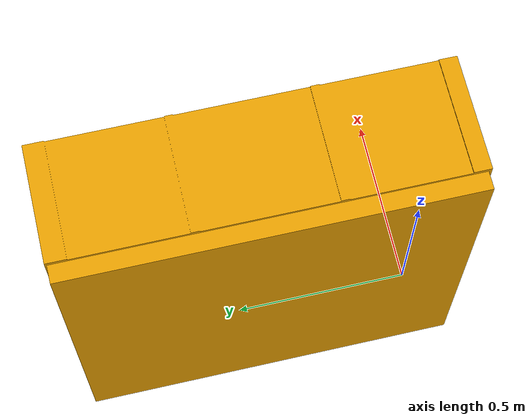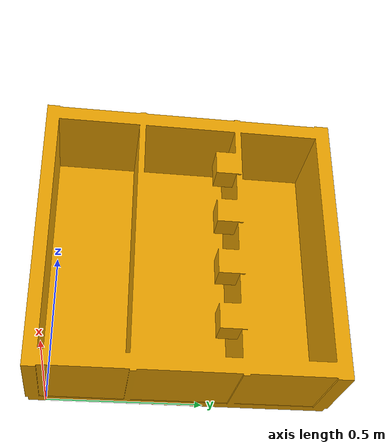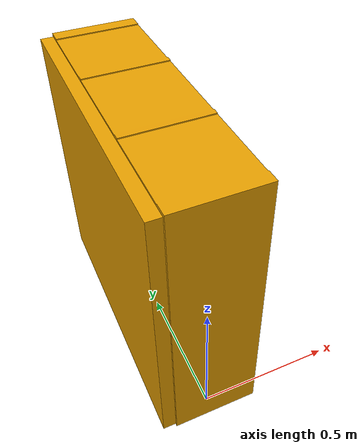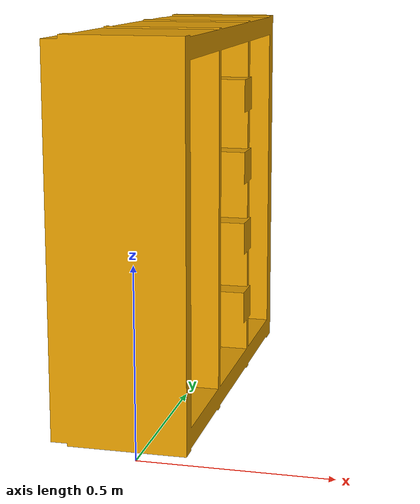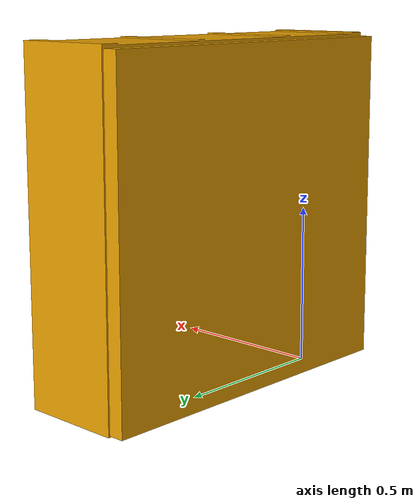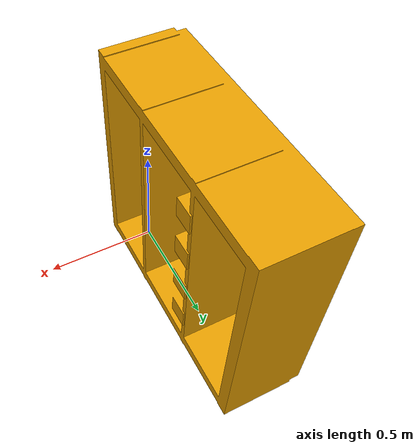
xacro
<?xml version="1.0"?>

<robot name="AR_marker" xmlns:xacro="http://www.ros.org/wiki/xacro">

 <link name="AR_link">
    <!-- pose and inertial -->
    <pose>0 0 0.1 0 0 0</pose>

    <inertial>
      <mass value="5"/>
      <origin rpy="0 0 0" xyz="0 0 0.1"/>
      <inertia ixx="0.0395416666667" ixy="0" ixz="0" iyy="0.106208333333" iyz="0" izz="0.106208333333"/>
    </inertial>

    <collision name="collision_chassis">
      <geometry>
       <mesh filename="package://summit_description/meshes/base/book_shelf.dae" />
      </geometry>
    </collision>

    <visual>
      <origin rpy="0 0 0" xyz="0 0 0"/>
      <geometry>
        <mesh filename="package://summit_description/meshes/base/book_shelf.dae" />
      </geometry>
    </visual>

    </link>

</robot>
